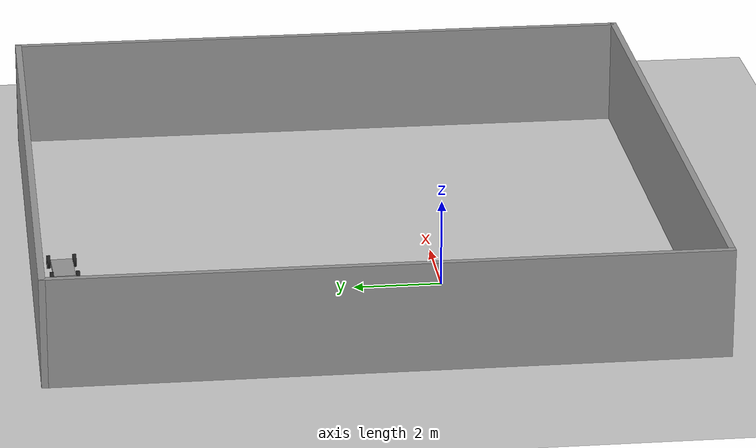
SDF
<sdf version="1.7">
 <world name="default">
  <light name="sun" type="directional">
   <pose>0 0 10 0 -0 0</pose>
   <diffuse>0.8 0.8 0.8 1</diffuse>
   <specular>0.2 0.2 0.2 1</specular>
   <attenuation>
    <range>1000</range>
    <constant>0.9</constant>
    <linear>0.01</linear>
    <quadratic>0.001</quadratic>
   </attenuation>
   <direction>-0.5 0.1 -0.9</direction>
   <spot><inner_angle>0</inner_angle><outer_angle>0</outer_angle><falloff>0</falloff></spot>
  </light>
  <model name="ground_plane">
   <static>1</static>
   <link name="link">
    <collision name="collision">
     <geometry><plane><normal>0 0 1</normal><size>100 100</size></plane></geometry>
     <surface><friction><ode><mu>100</mu><mu2>50</mu2></ode></friction></surface>
    </collision>
    <visual name="visual">
     <cast_shadows>0</cast_shadows>
     <geometry><plane><normal>0 0 1</normal><size>100 100</size></plane></geometry>
     <material>
      <script><uri>file://media/materials/scripts/gazebo.material</uri><name>Gazebo/Grey</name></script>
     </material>
    </visual>
   </link>
  </model>
  <gravity>0 0 -9.8</gravity>
  <magnetic_field>6e-06 2.3e-05 -4.2e-05</magnetic_field>
  <atmosphere type="adiabatic"/>
  <physics type="ode">
   <max_step_size>0.001</max_step_size>
   <real_time_factor>1</real_time_factor>
   <real_time_update_rate>1000</real_time_update_rate>
  </physics>
  <scene><ambient>0.4 0.4 0.4 1</ambient><background>0.7 0.7 0.7 1</background><shadows>1</shadows></scene>
  <audio><device>default</device></audio>
  <spherical_coordinates>
   <surface_model>EARTH_WGS84</surface_model>
   <latitude_deg>0</latitude_deg>
   <longitude_deg>0</longitude_deg>
   <elevation>0</elevation>
   <heading_deg>0</heading_deg>
  </spherical_coordinates>
  <model name="walls">
   <pose>2.77787 1.7398 0 0 -0 0</pose>
   <link name="Wall_13">
    <collision name="Wall_13_Collision">
     <geometry><box><size>15 0.15 2.5</size></box></geometry>
     <pose>0 0 1.25 0 -0 0</pose>
    </collision>
    <visual name="Wall_13_Visual">
     <pose>0 0 1.25 0 -0 0</pose>
     <geometry><box><size>15 0.15 2.5</size></box></geometry>
     <material>
      <script><uri>file://media/materials/scripts/gazebo.material</uri><name>Gazebo/Grey</name></script>
      <ambient>1 1 1 1</ambient>
     </material>
     <meta><layer>0</layer></meta>
    </visual>
    <pose>-0 -7.425 0 0 -0 0</pose>
   </link>
   <link name="Wall_14">
    <collision name="Wall_14_Collision">
     <geometry><box><size>0.15 0.15 2.5</size></box></geometry>
     <pose>0 0 1.25 0 -0 0</pose>
    </collision>
    <visual name="Wall_14_Visual">
     <pose>0 0 1.25 0 -0 0</pose>
     <geometry><box><size>0.15 0.15 2.5</size></box></geometry>
     <material>
      <script><uri>file://media/materials/scripts/gazebo.material</uri><name>Gazebo/Grey</name></script>
      <ambient>1 1 1 1</ambient>
     </material>
     <meta><layer>0</layer></meta>
    </visual>
    <pose>7.425 -7.425 0 0 -0 0</pose>
   </link>
   <link name="Wall_17">
    <collision name="Wall_17_Collision">
     <geometry><box><size>15 0.15 2.5</size></box></geometry>
     <pose>0 0 1.25 0 -0 0</pose>
    </collision>
    <visual name="Wall_17_Visual">
     <pose>0 0 1.25 0 -0 0</pose>
     <geometry><box><size>15 0.15 2.5</size></box></geometry>
     <material>
      <script><uri>file://media/materials/scripts/gazebo.material</uri><name>Gazebo/Grey</name></script>
      <ambient>1 1 1 1</ambient>
     </material>
     <meta><layer>0</layer></meta>
    </visual>
    <pose>7.425 0 0 0 -0 1.5708</pose>
   </link>
   <link name="Wall_19">
    <collision name="Wall_19_Collision">
     <geometry><box><size>15 0.15 2.5</size></box></geometry>
     <pose>0 0 1.25 0 -0 0</pose>
    </collision>
    <visual name="Wall_19_Visual">
     <pose>0 0 1.25 0 -0 0</pose>
     <geometry><box><size>15 0.15 2.5</size></box></geometry>
     <material>
      <script><uri>file://media/materials/scripts/gazebo.material</uri><name>Gazebo/Grey</name></script>
      <ambient>1 1 1 1</ambient>
     </material>
     <meta><layer>0</layer></meta>
    </visual>
    <pose>-0 7.425 0 0 -0 3.14159</pose>
   </link>
   <link name="Wall_20">
    <collision name="Wall_20_Collision">
     <geometry><box><size>0.15 0.15 2.5</size></box></geometry>
     <pose>0 0 1.25 0 -0 0</pose>
    </collision>
    <visual name="Wall_20_Visual">
     <pose>0 0 1.25 0 -0 0</pose>
     <geometry><box><size>0.15 0.15 2.5</size></box></geometry>
     <material>
      <script><uri>file://media/materials/scripts/gazebo.material</uri><name>Gazebo/Grey</name></script>
      <ambient>1 1 1 1</ambient>
     </material>
     <meta><layer>0</layer></meta>
    </visual>
    <pose>-7.425 7.425 0 0 -0 0</pose>
   </link>
   <link name="Wall_21">
    <collision name="Wall_21_Collision">
     <geometry><box><size>15 0.15 2.5</size></box></geometry>
     <pose>0 0 1.25 0 -0 0</pose>
    </collision>
    <visual name="Wall_21_Visual">
     <pose>0 0 1.25 0 -0 0</pose>
     <geometry><box><size>15 0.15 2.5</size></box></geometry>
     <material>
      <script><uri>file://media/materials/scripts/gazebo.material</uri><name>Gazebo/Grey</name></script>
      <ambient>1 1 1 1</ambient>
     </material>
     <meta><layer>0</layer></meta>
    </visual>
    <pose>-7.425 0 0 0 -0 -1.5708</pose>
   </link>
   <static>1</static>
  </model>
  <model name="cart_front_steer">
   <link name="chassis">
    <pose>0 0 0.15 0 -0 0</pose>
    <inertial>
     <pose>0.1 0 0 0 -0 0</pose>
     <mass>10</mass>
     <inertia>
      <ixx>0.216667</ixx>
      <iyy>0.841667</iyy>
      <izz>1.04167</izz>
      <ixy>0</ixy>
      <ixz>0</ixz>
      <iyz>0</iyz>
     </inertia>
    </inertial>
    <collision name="collision"><geometry><box><size>1 0.5 0.1</size></box></geometry></collision>
    <visual name="visual">
     <geometry><box><size>1 0.5 0.1</size></box></geometry>
     <material>
      <script><uri>file://media/materials/scripts/gazebo.material</uri><name>Gazebo/Grey</name></script>
     </material>
    </visual>
   </link>
   <link name="wheel_front_left">
    <pose>0.5 0.298 0.15 -1.5708 -0.087266 0</pose>
    <inertial>
     <mass>0.5</mass>
     <inertia>
      <ixx>0.00307917</ixx>
      <iyy>0.00307917</iyy>
      <izz>0.005625</izz>
      <ixy>0</ixy>
      <ixz>0</ixz>
      <iyz>0</iyz>
     </inertia>
    </inertial>
    <collision name="collision">
     <geometry><cylinder><radius>0.15</radius><length>0.08</length></cylinder></geometry>
    </collision>
    <visual name="visual">
     <geometry><cylinder><radius>0.15</radius><length>0.08</length></cylinder></geometry>
     <material>
      <script><uri>file://media/materials/scripts/gazebo.material</uri><name>Gazebo/Black</name></script>
     </material>
    </visual>
   </link>
   <joint name="wheel_front_left_steer_spin" type="universal">
    <parent>chassis</parent>
    <child>wheel_front_left</child>
    <axis>
     <xyz>0 -1 0</xyz>
     <limit><lower>-0.610865</lower><upper>0.610865</upper></limit>
     <dynamics><spring_reference>0</spring_reference><spring_stiffness>0</spring_stiffness></dynamics>
    </axis>
    <axis2>
     <xyz>0 0 1</xyz>
     <limit><upper>1e+16</upper><lower>-1e+16</lower></limit>
     <dynamics><spring_reference>0</spring_reference><spring_stiffness>0</spring_stiffness></dynamics>
    </axis2>
   </joint>
   <link name="wheel_front_right">
    <pose>0.5 -0.298 0.15 -1.5708 -0.087266 0</pose>
    <inertial>
     <mass>0.5</mass>
     <inertia>
      <ixx>0.00307917</ixx>
      <iyy>0.00307917</iyy>
      <izz>0.005625</izz>
      <ixy>0</ixy>
      <ixz>0</ixz>
      <iyz>0</iyz>
     </inertia>
    </inertial>
    <collision name="collision">
     <geometry><cylinder><radius>0.15</radius><length>0.08</length></cylinder></geometry>
    </collision>
    <visual name="visual">
     <geometry><cylinder><radius>0.15</radius><length>0.08</length></cylinder></geometry>
     <material>
      <script><uri>file://media/materials/scripts/gazebo.material</uri><name>Gazebo/Black</name></script>
     </material>
    </visual>
   </link>
   <joint name="wheel_front_right_steer_spin" type="universal">
    <parent>chassis</parent>
    <child>wheel_front_right</child>
    <axis>
     <xyz>0 -1 0</xyz>
     <limit><lower>-0.610865</lower><upper>0.610865</upper></limit>
     <dynamics><spring_reference>0</spring_reference><spring_stiffness>0</spring_stiffness></dynamics>
    </axis>
    <axis2>
     <xyz>0 0 1</xyz>
     <limit><upper>1e+16</upper><lower>-1e+16</lower></limit>
     <dynamics><spring_reference>0</spring_reference><spring_stiffness>0</spring_stiffness></dynamics>
    </axis2>
   </joint>
   <link name="wheel_rear_left">
    <pose>-0.5 0.298 0.15 -1.5708 0 0</pose>
    <inertial>
     <mass>0.5</mass>
     <inertia>
      <ixx>0.00307917</ixx>
      <iyy>0.00307917</iyy>
      <izz>0.005625</izz>
      <ixy>0</ixy>
      <ixz>0</ixz>
      <iyz>0</iyz>
     </inertia>
    </inertial>
    <collision name="collision">
     <geometry><cylinder><radius>0.15</radius><length>0.08</length></cylinder></geometry>
    </collision>
    <visual name="visual">
     <geometry><cylinder><radius>0.15</radius><length>0.08</length></cylinder></geometry>
     <material>
      <script><uri>file://media/materials/scripts/gazebo.material</uri><name>Gazebo/Black</name></script>
     </material>
    </visual>
   </link>
   <joint name="wheel_rear_left_spin" type="revolute">
    <parent>chassis</parent>
    <child>wheel_rear_left</child>
    <axis>
     <xyz>0 0 1</xyz>
     <limit><lower>-1e+16</lower><upper>1e+16</upper></limit>
     <dynamics><spring_reference>0</spring_reference><spring_stiffness>0</spring_stiffness></dynamics>
    </axis>
   </joint>
   <link name="wheel_rear_right">
    <pose>-0.5 -0.298 0.15 -1.5708 0 0</pose>
    <inertial>
     <mass>0.5</mass>
     <inertia>
      <ixx>0.00307917</ixx>
      <iyy>0.00307917</iyy>
      <izz>0.005625</izz>
      <ixy>0</ixy>
      <ixz>0</ixz>
      <iyz>0</iyz>
     </inertia>
    </inertial>
    <collision name="collision">
     <geometry><cylinder><radius>0.15</radius><length>0.08</length></cylinder></geometry>
    </collision>
    <visual name="visual">
     <geometry><cylinder><radius>0.15</radius><length>0.08</length></cylinder></geometry>
     <material>
      <script><uri>file://media/materials/scripts/gazebo.material</uri><name>Gazebo/Black</name></script>
     </material>
    </visual>
   </link>
   <joint name="wheel_rear_right_spin" type="revolute">
    <parent>chassis</parent>
    <child>wheel_rear_right</child>
    <axis>
     <xyz>0 0 1</xyz>
     <limit><lower>-1e+16</lower><upper>1e+16</upper></limit>
     <dynamics><spring_reference>0</spring_reference><spring_stiffness>0</spring_stiffness></dynamics>
    </axis>
   </joint>
   <pose>1.43508 8.50514 -2e-06 -1.6e-05 -1e-06 0.041095</pose>
  </model>
 </world>
</sdf>
